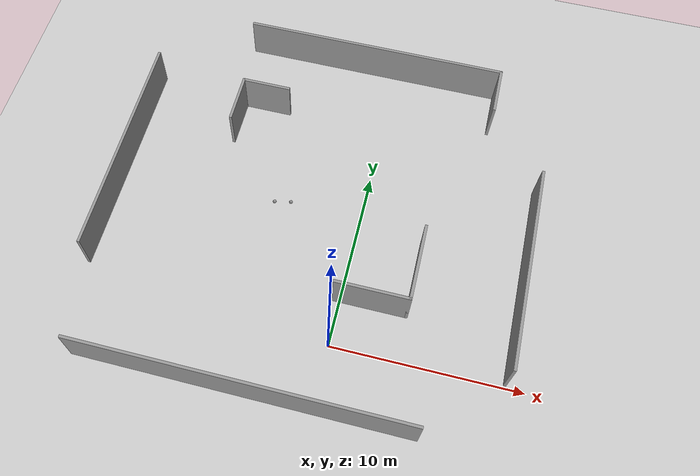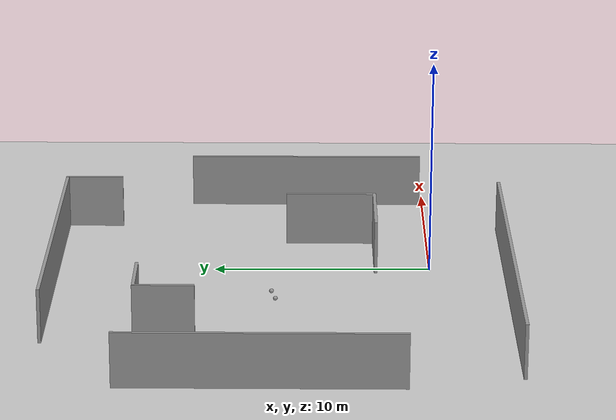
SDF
<sdf version="1.7">
 <world name="default">
  <model name="ground_plane">
   <static>1</static>
   <link name="link">
    <collision name="collision">
     <geometry><plane><normal>0 0 1</normal><size>100 100</size></plane></geometry>
     <surface>
      <contact><collide_bitmask>65535</collide_bitmask></contact>
      <friction><ode><mu>100</mu><mu2>50</mu2></ode></friction>
     </surface>
    </collision>
    <visual name="visual">
     <cast_shadows>0</cast_shadows>
     <geometry><plane><normal>0 0 1</normal><size>100 100</size></plane></geometry>
     <material>
      <script><uri>file://media/materials/scripts/gazebo.material</uri><name>Gazebo/Grey</name></script>
     </material>
    </visual>
   </link>
  </model>
  <model name="Wallworld">
   <pose>-2.25057 6.92757 0 0 -0 0</pose>
   <link name="Wall_17">
    <collision name="Wall_17_Collision">
     <geometry><box><size>17.75 0.15 2.5</size></box></geometry>
     <pose>0 0 1.25 0 -0 0</pose>
    </collision>
    <visual name="Wall_17_Visual">
     <pose>0 0 1.25 0 -0 0</pose>
     <geometry><box><size>17.75 0.15 2.5</size></box></geometry>
     <material>
      <script><uri>file://media/materials/scripts/gazebo.material</uri><name>Gazebo/Grey</name></script>
      <ambient>1 1 1 1</ambient>
     </material>
     <meta><layer>0</layer></meta>
    </visual>
    <pose>-1.33606 -10.4255 0 0 -0 0</pose>
   </link>
   <link name="Wall_19">
    <collision name="Wall_19_Collision">
     <geometry><box><size>11.25 0.15 2.5</size></box></geometry>
     <pose>0 0 1.25 0 -0 0</pose>
    </collision>
    <visual name="Wall_19_Visual">
     <pose>0 0 1.25 0 -0 0</pose>
     <geometry><box><size>11.25 0.15 2.5</size></box></geometry>
     <material>
      <script><uri>file://media/materials/scripts/gazebo.material</uri><name>Gazebo/Grey</name></script>
      <ambient>1 1 1 1</ambient>
     </material>
     <meta><layer>0</layer></meta>
    </visual>
    <pose>11.2141 -1.14728 0 0 -0 -1.5708</pose>
   </link>
   <link name="Wall_21">
    <collision name="Wall_21_Collision">
     <geometry><box><size>4 0.15 2.5</size></box></geometry>
     <pose>0 0 1.25 0 -0 0</pose>
    </collision>
    <visual name="Wall_21_Visual">
     <pose>0 0 1.25 0 -0 0</pose>
     <geometry><box><size>4 0.15 2.5</size></box></geometry>
     <material>
      <script><uri>file://media/materials/scripts/gazebo.material</uri><name>Gazebo/Grey</name></script>
      <ambient>1 1 1 1</ambient>
     </material>
     <meta><layer>0</layer></meta>
    </visual>
    <pose>3.84841 -4.39577 0 0 -0 0</pose>
   </link>
   <link name="Wall_22">
    <collision name="Wall_22_Collision">
     <geometry><box><size>4.25 0.15 2.5</size></box></geometry>
     <pose>0 0 1.25 0 -0 0</pose>
    </collision>
    <visual name="Wall_22_Visual">
     <pose>0 0 1.25 0 -0 0</pose>
     <geometry><box><size>4.25 0.15 2.5</size></box></geometry>
     <material>
      <script><uri>file://media/materials/scripts/gazebo.material</uri><name>Gazebo/Grey</name></script>
      <ambient>1 1 1 1</ambient>
     </material>
     <meta><layer>0</layer></meta>
    </visual>
    <pose>5.77341 -2.34577 0 0 -0 1.5708</pose>
   </link>
   <link name="Wall_24">
    <collision name="Wall_24_Collision">
     <geometry><box><size>12.5 0.15 2.5</size></box></geometry>
     <pose>0 0 1.25 0 -0 0</pose>
    </collision>
    <visual name="Wall_24_Visual">
     <pose>0 0 1.25 0 -0 0</pose>
     <geometry><box><size>12.5 0.15 2.5</size></box></geometry>
     <material>
      <script><uri>file://media/materials/scripts/gazebo.material</uri><name>Gazebo/Grey</name></script>
      <ambient>1 1 1 1</ambient>
     </material>
     <meta><layer>0</layer></meta>
    </visual>
    <pose>-11.2141 0.745498 0 0 -0 -1.5708</pose>
   </link>
   <link name="Wall_26">
    <collision name="Wall_26_Collision">
     <geometry><box><size>14.75 0.15 2.5</size></box></geometry>
     <pose>0 0 1.25 0 -0 0</pose>
    </collision>
    <visual name="Wall_26_Visual">
     <pose>0 0 1.25 0 -0 0</pose>
     <geometry><box><size>14.75 0.15 2.5</size></box></geometry>
     <material>
      <script><uri>file://media/materials/scripts/gazebo.material</uri><name>Gazebo/Grey</name></script>
      <ambient>1 1 1 1</ambient>
     </material>
     <meta><layer>0</layer></meta>
    </visual>
    <pose>0.787656 10.4255 0 0 -0 0</pose>
   </link>
   <link name="Wall_27">
    <collision name="Wall_27_Collision">
     <geometry><box><size>2.75 0.15 2.5</size></box></geometry>
     <pose>0 0 1.25 0 -0 0</pose>
    </collision>
    <visual name="Wall_27_Visual">
     <pose>0 0 1.25 0 -0 0</pose>
     <geometry><box><size>2.75 0.15 2.5</size></box></geometry>
     <material>
      <script><uri>file://media/materials/scripts/gazebo.material</uri><name>Gazebo/Grey</name></script>
      <ambient>1 1 1 1</ambient>
     </material>
     <meta><layer>0</layer></meta>
    </visual>
    <pose>8.08766 9.1255 0 0 -0 -1.5708</pose>
   </link>
   <link name="Wall_29">
    <collision name="Wall_29_Collision">
     <geometry><box><size>2.75 0.15 2.5</size></box></geometry>
     <pose>0 0 1.25 0 -0 0</pose>
    </collision>
    <visual name="Wall_29_Visual">
     <pose>0 0 1.25 0 -0 0</pose>
     <geometry><box><size>2.75 0.15 2.5</size></box></geometry>
     <material>
      <script><uri>file://media/materials/scripts/gazebo.material</uri><name>Gazebo/Grey</name></script>
      <ambient>1 1 1 1</ambient>
     </material>
     <meta><layer>0</layer></meta>
    </visual>
    <pose>-5.94275 5.05311 0 0 -0 1.5708</pose>
   </link>
   <link name="Wall_30">
    <collision name="Wall_30_Collision">
     <geometry><box><size>2.75 0.15 2.5</size></box></geometry>
     <pose>0 0 1.25 0 -0 0</pose>
    </collision>
    <visual name="Wall_30_Visual">
     <pose>0 0 1.25 0 -0 0</pose>
     <geometry><box><size>2.75 0.15 2.5</size></box></geometry>
     <material>
      <script><uri>file://media/materials/scripts/gazebo.material</uri><name>Gazebo/Grey</name></script>
      <ambient>1 1 1 1</ambient>
     </material>
     <meta><layer>0</layer></meta>
    </visual>
    <pose>-4.64275 6.35311 0 0 -0 0</pose>
   </link>
   <static>1</static>
  </model>
  <model name="0.1unit_sphere_clone_1">
   <link name="link">
    <inertial>
     <mass>1</mass>
     <inertia><ixx>0.1</ixx><ixy>0</ixy><ixz>0</ixz><iyy>0.1</iyy><iyz>0</iyz><izz>0.1</izz></inertia>
    </inertial>
    <visual name="visual">
     <geometry><sphere><radius>0.1</radius></sphere></geometry>
     <material>
      <script><name>Gazebo/Grey</name><uri>file://media/materials/scripts/gazebo.material</uri></script>
      <shader type="pixel"><normal_map>__default__</normal_map></shader>
      <ambient>0.3 0.3 0.3 1</ambient>
      <diffuse>0.7 0.7 0.7 1</diffuse>
      <specular>0.01 0.01 0.01 1</specular>
      <emissive>0 0 0 1</emissive>
     </material>
    </visual>
    <collision name="collision">
     <geometry><sphere><radius>0.1</radius></sphere></geometry>
     <surface>
      <friction>
       <ode><mu>1</mu><mu2>1</mu2><fdir1>0 0 0</fdir1><slip1>0</slip1><slip2>0</slip2></ode>
       <torsional>
        <coefficient>1</coefficient>
        <patch_radius>0</patch_radius>
        <surface_radius>0</surface_radius>
        <use_patch_radius>1</use_patch_radius>
        <ode><slip>0</slip></ode>
       </torsional>
      </friction>
      <bounce><restitution_coefficient>0</restitution_coefficient><threshold>1e+06</threshold></bounce>
      <contact>
       <collide_without_contact>0</collide_without_contact>
       <collide_without_contact_bitmask>1</collide_without_contact_bitmask>
       <collide_bitmask>1</collide_bitmask>
       <ode>
        <soft_cfm>0</soft_cfm>
        <soft_erp>0.2</soft_erp>
        <kp>1e+13</kp>
        <kd>1</kd>
        <max_vel>0.01</max_vel>
        <min_depth>0</min_depth>
       </ode>
       <bullet>
        <split_impulse>1</split_impulse>
        <split_impulse_penetration_threshold>-0.01</split_impulse_penetration_threshold>
        <soft_cfm>0</soft_cfm>
        <soft_erp>0.2</soft_erp>
        <kp>1e+13</kp>
        <kd>1</kd>
       </bullet>
      </contact>
     </surface>
    </collision>
   </link>
   <static>0</static>
   <pose>-3.89813 7.32606 0.5 0 -0 0</pose>
  </model>
  <model name="0.1unit_sphere_clone_40">
   <link name="link">
    <inertial>
     <mass>1</mass>
     <inertia><ixx>0.1</ixx><ixy>0</ixy><ixz>0</ixz><iyy>0.1</iyy><iyz>0</iyz><izz>0.1</izz></inertia>
    </inertial>
    <visual name="visual">
     <geometry><sphere><radius>0.1</radius></sphere></geometry>
     <material>
      <script><name>Gazebo/Grey</name><uri>file://media/materials/scripts/gazebo.material</uri></script>
      <shader type="pixel"><normal_map>__default__</normal_map></shader>
      <ambient>0.3 0.3 0.3 1</ambient>
      <diffuse>0.7 0.7 0.7 1</diffuse>
      <specular>0.01 0.01 0.01 1</specular>
      <emissive>0 0 0 1</emissive>
     </material>
    </visual>
    <collision name="collision">
     <geometry><sphere><radius>0.1</radius></sphere></geometry>
     <surface>
      <friction>
       <ode><mu>1</mu><mu2>1</mu2><fdir1>0 0 0</fdir1><slip1>0</slip1><slip2>0</slip2></ode>
       <torsional>
        <coefficient>1</coefficient>
        <patch_radius>0</patch_radius>
        <surface_radius>0</surface_radius>
        <use_patch_radius>1</use_patch_radius>
        <ode><slip>0</slip></ode>
       </torsional>
      </friction>
      <bounce><restitution_coefficient>0</restitution_coefficient><threshold>1e+06</threshold></bounce>
      <contact>
       <collide_without_contact>0</collide_without_contact>
       <collide_without_contact_bitmask>1</collide_without_contact_bitmask>
       <collide_bitmask>1</collide_bitmask>
       <ode>
        <soft_cfm>0</soft_cfm>
        <soft_erp>0.2</soft_erp>
        <kp>1e+13</kp>
        <kd>1</kd>
        <max_vel>0.01</max_vel>
        <min_depth>0</min_depth>
       </ode>
       <bullet>
        <split_impulse>1</split_impulse>
        <split_impulse_penetration_threshold>-0.01</split_impulse_penetration_threshold>
        <soft_cfm>0</soft_cfm>
        <soft_erp>0.2</soft_erp>
        <kp>1e+13</kp>
        <kd>1</kd>
       </bullet>
      </contact>
     </surface>
    </collision>
   </link>
   <static>0</static>
   <pose>-4.77696 7.13992 0.5 0 -0 0</pose>
  </model>
 </world>
</sdf>
